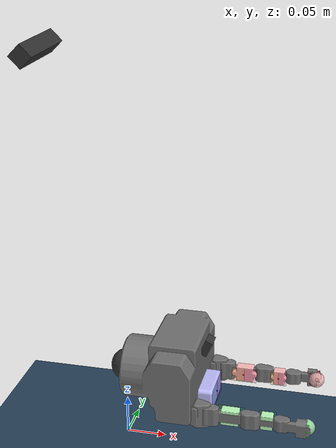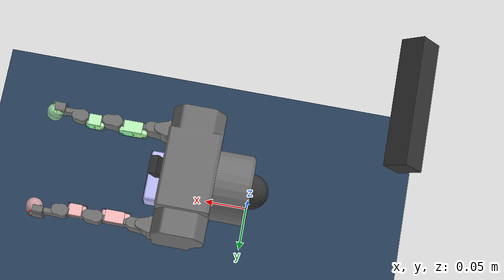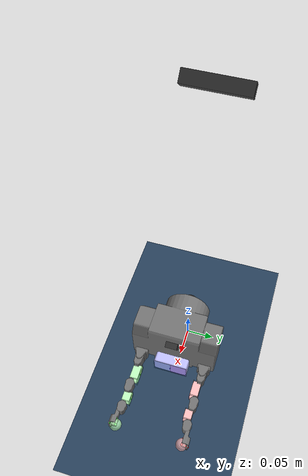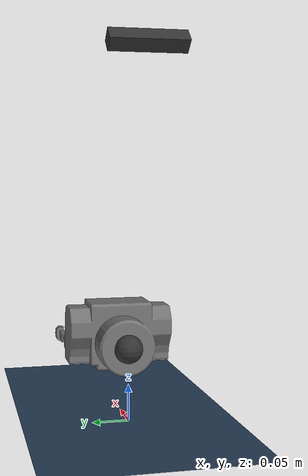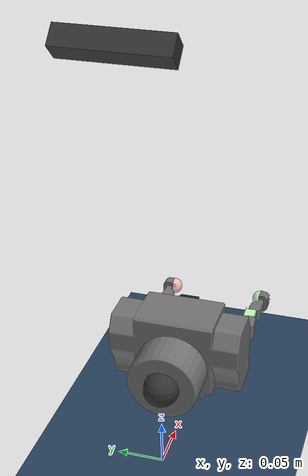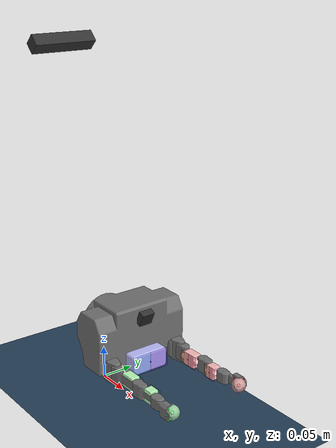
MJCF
<mujoco model="scene">

  <include file="scene_v2.xml"/>
  <!-- CUBE -->
  <worldbody>
    <body name="object" pos="0.22 0 0.02">
        <joint type="free" group="3" stiffness="0" damping="0" frictionloss="0" armature="0"/>
        <geom name="object" type="box" group="3" size="0.03 0.03 0.03" rgba="0.7 0.2 0.1 0.6" class="contact" density="1000"/>
    </body>

  </worldbody>

</mujoco>

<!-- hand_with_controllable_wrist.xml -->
<mujoco model="hand">

    <compiler angle="radian" autolimits="true"/>

    <default class="main">
        <default class="XM430">
            <joint armature="0.002214" damping="0.1" frictionloss = "0.04"/> <!-- Reflected Inertia: 4.9e-8*212.6**2 -->
        </default>
        <default class="AK606">
            <!-- TODO: correct rotor inertia -->
            <joint armature="0.011087" damping="0.1" frictionloss="0.04"/> <!-- Reflected Inertia: 4.78e-7*152.3**2 -->
        </default>
        <!-- TODO: add defaults for contact parameters for different sensor bodies? -->
        <default class="contact">
            <geom conaffinity="1" contype="1" condim="6" priority="1" friction="1.0 0.02 0.0001" solimp="0.95 0.99 0.001 0.5 2"  solref="0.005 1"/>
        </default>
        <default class="no_contact">
            <geom conaffinity="0" contype="0" priority="0"/>
        </default>

    </default>

    <asset>
        <mesh name="palm_structure" file="meshes/palm_block_structure.STL"/>
        <mesh name="palm_sensor"    file="meshes/palm_block_sensor.STL"/>
        <mesh name="mcr"            file="meshes/right_finger_MCR_block.STL"/>
        <mesh name="mcp_structure"  file="meshes/right_finger_MCP_structure.STL"/>
        <mesh name="mcp_sensor"     file="meshes/right_finger_MCP_sensor.STL"/>
        <mesh name="pip_structure"  file="meshes/right_finger_PIP_structure.STL"/>
        <mesh name="pip_sensor"     file="meshes/right_finger_PIP_sensor.STL"/>
        <mesh name="dip"            file="meshes/right_finger_DIP_block_no_sphere.STL"/>
    </asset>

    <worldbody>

        <!-- FLOATING BASE WITH MOCAP-->

        <body name="floating_2" pos="0 0 0.1" euler="0 0 0">
            <inertial mass="5.0" pos="0 0 0" diaginertia="0.1 0.1 0.1"/>
            <geom name="floating_2" type="sphere" group="1" size="0.02" rgba="0.2 0.2 0.2 1" class="contact"/>
            <site name="floating_2" group="4" pos="0.1 0 0" euler="0 0 0" size="0.01" rgba="0.1 0.1 0.1 0.2"/>
            <freejoint name="floating_2"/>

            <!-- PALM -->
            <body name="palm" pos="0 0 0" >
                <inertial pos="0.0749802 -4.70306e-06 -0.0266387" quat="0.00107158 0.711377 -0.0010321 0.702809" mass="1.5008" diaginertia="0.00408874 0.0030361 0.00192975"/>
                <joint name="1_w_roll" group="0" class="AK606" pos="0 0 0" axis="1 0 0" range="-12.5 12.5"/>
                <geom name="palm" type="mesh" class="contact" group="1" density="0" rgba="0.45 0.45 0.45 1" mesh="palm_structure"/>
                <geom name="palm_sensor" type="mesh" class="contact" group="2" density="0" rgba="0.75 0.75 1 1" mesh="palm_sensor"/>
                <site name="palm_tof" group="0" size="0.001" pos="0.118 0 -0.0236" rgba="0 0 1 1" euler="0 1.57079633 0"/>
                <site name="palm_fsr1" group="1" type="box" size="0.0148 0.01465 0.0001" pos="0.118 0.01465 -0.0236" rgba="0.4 0 0.9 0.1" euler="0 1.57079633 0"/>
                <site name="palm_fsr2" group="1" type="box" size="0.0148 0.01465 0.0001" pos="0.118 -0.01465 -0.0236" rgba="0 0.4 0.9 0.1" euler="0 1.57079633 0"/>

                <!-- PALM CAMERA -->
                <body name="palm_camera" pos="0.105 0 0.04" euler="0 2.0 1.5707963308">
                    <camera name="palm_camera" mode="fixed" pos ="0 0 0" euler="0 3.1415926516 0"/>
                    <geom name="palm_camera" type="box" group="1" size="0.01 0.01 0.005" rgba="0.2 0.2 0.2 1" class="no_contact"/>
                </body>

                <!-- LEFT FINGER -->
                <body name="l_mcr" pos="0.097 0.0565 -0.0236">
                    <inertial pos="0.0074427 1.8066e-09 0" quat="0.707107 -0.000458825 0.000458825 0.707107" mass="0.010716" diaginertia="6.50791e-07 4.9487e-07 3.46479e-07"/>
                    <joint name="2_l_mcr" group="1" class="XM430" pos="0 0 0" axis="0 1 0" range="-1 1" />
                    <geom name="l_mcr" type="mesh" class="contact" group="1" density="0" rgba="0.45 0.45 0.45 1" mesh="mcr"/>

                    <body name="l_mcp" pos="0.0185 0 0">
                        <inertial pos="0.015541 -2.172e-09 4.8274e-09" quat="0 0.707107 0 0.707107" mass="0.011831" diaginertia="1.0186e-06 8.576e-07 2.7094e-07"/>
                        <joint name="3_l_mcp" group="1" class="XM430" pos="0 0 0" axis="0 0 1" range="-1.57079633 1.57079633" />
                        <geom name="l_mcp" quat="0 1 0 0" type="mesh" class="contact" group="1" density="0" rgba="0.45 0.45 0.45 1" mesh="mcp_structure"/>
                        <geom name="l_mcp_sensor" pos="0 -0.00001 0" quat="0 1 0 0" type="mesh" class="contact" group="2" density="0" rgba="1 0.75 0.75 1" mesh="mcp_sensor"/>
                        <site name="l_mcp_tof" group="0" size="0.001" pos="0.02825 -0.01025 0" rgba="1 0 0 1" euler="1.57079633 0 0"/>
                        <site name="l_mcp_fsr1" group="1" type="box" size="0.008125 0.00975 0.0001" pos="0.021125 -0.01025 0" rgba="0.9 0.4 0 0.1" euler="1.57079633 0 0"/>
                        <site name="l_mcp_fsr2" group="1" type="box" size="0.008125 0.00975 0.0001" pos="0.037375 -0.01025 0" rgba="0.9 0 0.4 0.1" euler="1.57079633 0 0"/>

                        <body name="l_pip" pos="0.05 0 0">
                            <inertial pos="0.012348 -2.7466e-09 -4.6495e-09" quat="0 0.707107 0 0.707107" mass="0.010593" diaginertia="6.35e-07 4.7964e-07 2.2485e-07"/>
                            <joint name="4_l_pip" group="1" class="XM430" pos="0 0 0" axis="0 0 1" range="-1.57079633 1.57079633" />
                            <geom name="l_pip" quat="0 1 0 0" type="mesh" class="contact" group="1" density="0" rgba="0.45 0.45 0.45 1" mesh="pip_structure"/>
                            <geom name="l_pip_sensor" pos="0 -0.00001 0" quat="0 1 0 0" type="mesh" class="contact" group="2" density="0" rgba="1 0.75 0.75 1" mesh="pip_sensor"/>
                            <site name="l_pip_tof" group="0" size="0.001" pos="0.024 -0.00975 0" rgba="1 0 0 1" euler="1.57079633 0 0"/>
                            <site name="l_pip_fsr1" group="1" type="box" size="0.00525 0.00925 0.0001" pos="0.01875 -0.00975 0" rgba="0.9 0.4 0 0.1" euler="1.57079633 0 0"/>
                            <site name="l_pip_fsr2" group="1" type="box" size="0.00525 0.00925 0.0001" pos="0.02925 -0.00975 0" rgba="0.9 0 0.4 0.1" euler="1.57079633 0 0"/>

                            <body name="l_dip" pos="0.04 0 0">
                                <inertial pos="0.022019 -0.0011798 9.2257e-05" quat="0.559785 0.00180072 -0.00151435 0.828635" mass="0.027278" diaginertia="1.18481e-06 1.169e-06 9.71445e-07"/>
                                <joint name="5_l_dip" group="1" class="XM430" pos="0 0 0" axis="0 0 1" range="-1.57079633 1.57079633" />
                                <geom name="l_dip" quat="0 1 0 0" type="mesh" class="contact" group="1" density="0" rgba="0.45 0.45 0.45 1" mesh="dip"/>
                                <site name="l_dip_tof1" group="0" size="0.001" pos="0.035 0.008 0.00782" rgba="1 0 0 1" euler="0 1.57079633 0"/>
                                <site name="l_dip_tof2" group="0" size="0.001" pos="0.0243 0 0.00735" rgba="1 0 0 1" euler="1.57079633 0 0"/>
                                <site name="l_dip_tof3" group="0" size="0.001" pos="0.035 0.008 -0.00782" rgba="1 0 0 1" euler="0 1.57079633 0"/>
                                <site name="l_dip_tof4" group="0" size="0.001" pos="0.0243 0 -0.00735" rgba="1 0 0 1" euler="1.57079633 0 0"/>
                                <site name="l_dip_tof5" group="0" size="0.001" pos="0.034 0.011 0" rgba="1 0 0 1" euler="-1.57079633 0 0"/>

                                <body name="l_dip_tip" pos="0.0325 0 0">
                                    <inertial pos="0 0 0" mass="0.001" diaginertia="4e-8 4e-8 4e-8"/>
                                    <geom name="l_dip_tip" size="0.01" group="2" pos="0 0 0" rgba="1 0.75 0.75 0.8" class="contact"/>
                                    <site name="l_dip_force" group="2" size="0.002" pos="0 0 0" rgba="1 0 0 1" euler="-1.57079633 3.14159265 0"/>
                                </body>
                            </body>
                        </body>
                    </body>
                </body>

                <!-- RIGHT FINGER -->
                <body name="r_mcr" pos="0.097 -0.0565 -0.0236">
                    <inertial pos="0.0074427 1.8066e-09 0" quat="0.707107 -0.000458825 0.000458825 0.707107" mass="0.010716" diaginertia="6.50791e-07 4.9487e-07 3.46479e-07"/>
                    <joint name="6_r_mcr" group="2" class="XM430" pos="0 0 0" axis="0 1 0" range="-1 1" /> <!-- Reflected Inertia: 9.93E-6*212.6**2-->
                    <geom name="r_mcr" type="mesh" class="contact" group="1" density="0" rgba="0.45 0.45 0.45 1" mesh="mcr"/>

                    <body name="r_mcp" pos="0.0185 0 0">
                        <inertial pos="0.015541 -2.172e-09 4.8274e-09" quat="0 0.707107 0 0.707107" mass="0.011831" diaginertia="1.0186e-06 8.576e-07 2.7094e-07"/>
                        <joint name="7_r_mcp" group="2" class="XM430" pos="0 0 0" axis="0 0 1" range="-1.57079633 1.57079633" />
                        <geom name="r_mcp" type="mesh" class="contact" group="1" density="0" rgba="0.45 0.45 0.45 1" mesh="mcp_structure"/>
                        <geom name="r_mcp_sensor" pos="0 0.00001 0" type="mesh" class="contact" group="2" density="0" rgba="0.75 1 0.75 1" mesh="mcp_sensor"/>
                        <site name="r_mcp_tof" group="0" size="0.001" pos="0.02825 0.01025 0" rgba="0 1 0 1" euler="-1.57079633 0 0"/>
                        <site name="r_mcp_fsr1" group="1" type="box" size="0.008125 0.00975 0.0001" pos="0.021125 0.01025 0" rgba="0.4 0.9 0 0.1" euler="-1.57079633 0 0"/>
                        <site name="r_mcp_fsr2" group="1" type="box" size="0.008125 0.00975 0.0001" pos="0.037375 0.01025 0" rgba="0 0.9 0.4 0.1" euler="-1.57079633 0 0"/>

                        <body name="r_pip" pos="0.05 0 0">
                            <inertial pos="0.012348 -2.7466e-09 -4.6495e-09" quat="0 0.707107 0 0.707107" mass="0.010593" diaginertia="6.35e-07 4.7964e-07 2.2485e-07"/>
                            <joint name="8_r_pip" group="2" class="XM430" pos="0 0 0" axis="0 0 1" range="-1.57079633 1.57079633" />
                            <geom name="r_pip" type="mesh" class="contact" group="1" density="0" rgba="0.45 0.45 0.45 1" mesh="pip_structure"/>
                            <geom name="r_pip_sensor" pos="0 0.00001 0" type="mesh" class="contact" group="2" density="0" rgba="0.75 1 0.75 1" mesh="pip_sensor"/>
                            <site name="r_pip_tof" group="0" size="0.001" pos="0.024 0.00975 0" rgba="0 1 0 1" euler="-1.57079633 0 0"/>
                            <site name="r_pip_fsr1" group="1" type="box" size="0.00525 0.00925 0.0001" pos="0.01875 0.00975 0" rgba="0.4 0.9 0 0.1" euler="-1.57079633 0 0"/>
                            <site name="r_pip_fsr2" group="1" type="box" size="0.00525 0.00925 0.0001" pos="0.02925 0.00975 0" rgba="0 0.9 0.4 0.1" euler="-1.57079633 0 0"/>

                            <body name="r_dip" pos="0.04 0 0">
                                <inertial pos="0.022019 -0.0011798 9.2257e-05" quat="0.559785 0.00180072 -0.00151435 0.828635" mass="0.027278" diaginertia="1.18481e-06 1.169e-06 9.71445e-07"/>
                                <joint name="9_r_dip" group="2" class="XM430" pos="0 0 0" axis="0 0 1" range="-1.57079633 1.57079633" />
                                <geom name="r_dip" type="mesh" class="contact" group="1" density="0" rgba="0.45 0.45 0.45 1" mesh="dip"/>
                                <site name="r_dip_tof1" group="0" size="0.001" pos="0.035 -0.008 -0.00782" rgba="0 1 0 1" euler="0 1.57079633 0"/>
                                <site name="r_dip_tof2" group="0" size="0.001" pos="0.0243 0 -0.00735" rgba="0 1 0 1" euler="-1.57079633 0 0"/>
                                <site name="r_dip_tof3" group="0" size="0.001" pos="0.035 -0.008 0.00782" rgba="0 1 0 1" euler="0 1.57079633 0"/>
                                <site name="r_dip_tof4" group="0" size="0.001" pos="0.0243 0 0.00735" rgba="0 1 0 1" euler="-1.57079633 0 0"/>
                                <site name="r_dip_tof5" group="0" size="0.001" pos="0.034 -0.011 0" rgba="0 1 0 1" euler="1.57079633 0 0"/>

                                <body name="r_dip_tip" pos="0.0325 0 0">
                                    <inertial pos="0 0 0" mass="0.001" diaginertia="4e-8 4e-8 4e-8"/>
                                    <geom name="r_dip_tip" size="0.01" group="2" pos="0 0 0" rgba="0.75 1 0.75 0.8" class="contact"/>
                                    <site name="r_dip_force" group="2" size="0.002" pos="0 0 0" rgba="0 1 0 1" euler="1.57079633 3.14159265 0"/>
                                </body>
                            </body>
                        </body>
                    </body>
                </body>
            </body>
        </body>

    </worldbody>

    <contact>
        <exclude body1="floating_2"   body2="palm"/>
        <exclude body1="palm"       body2="palm_camera"/>
        <exclude body1="l_mcr"      body2="palm"/>
        <exclude body1="r_mcr"      body2="palm"/>
        <exclude body1="l_mcp"      body2="l_mcr"/>
        <exclude body1="r_mcp"      body2="r_mcr"/>
        <exclude body1="l_pip"      body2="l_mcp"/>
        <exclude body1="r_pip"      body2="r_mcp"/>
        <exclude body1="l_dip"      body2="l_pip"/>
        <exclude body1="r_dip"      body2="r_pip"/>
        <exclude body1="l_dip_tip"  body2="l_dip"/>
        <exclude body1="r_dip_tip"  body2="r_dip"/>
    </contact>

    <sensor>
        <!-- TOF SENSORS -->
        <rangefinder name="palm_tof"    site="palm_tof"     cutoff="0.255"   noise="0.003"/>
        <rangefinder name="l_mcp_tof"   site="l_mcp_tof"    cutoff="0.255"   noise="0.003"/>
        <rangefinder name="l_pip_tof"   site="l_pip_tof"    cutoff="0.255"   noise="0.003"/>
        <rangefinder name="r_mcp_tof"   site="r_mcp_tof"    cutoff="0.255"   noise="0.003"/>
        <rangefinder name="r_pip_tof"   site="r_pip_tof"    cutoff="0.255"   noise="0.003"/>
        <rangefinder name="l_dip_tof1"  site="l_dip_tof1"   cutoff="0.255"   noise="0.003"/>
        <rangefinder name="l_dip_tof2"  site="l_dip_tof2"   cutoff="0.255"   noise="0.003"/>
        <rangefinder name="l_dip_tof3"  site="l_dip_tof3"   cutoff="0.255"   noise="0.003"/>
        <rangefinder name="l_dip_tof4"  site="l_dip_tof4"   cutoff="0.255"   noise="0.003"/>
        <rangefinder name="l_dip_tof5"  site="l_dip_tof5"   cutoff="0.255"   noise="0.003"/>
        <rangefinder name="r_dip_tof1"  site="r_dip_tof1"   cutoff="0.255"   noise="0.003"/>
        <rangefinder name="r_dip_tof2"  site="r_dip_tof2"   cutoff="0.255"   noise="0.003"/>
        <rangefinder name="r_dip_tof3"  site="r_dip_tof3"   cutoff="0.255"   noise="0.003"/>
        <rangefinder name="r_dip_tof4"  site="r_dip_tof4"   cutoff="0.255"   noise="0.003"/>
        <rangefinder name="r_dip_tof5"  site="r_dip_tof5"   cutoff="0.255"   noise="0.003"/>

        <!-- CONTACT SENSORS -->
        <touch name="palm_fsr1"     site="palm_fsr1"/>
        <touch name="palm_fsr2"     site="palm_fsr2"/>
        <touch name="l_mcp_fsr1"    site="l_mcp_fsr1"/>
        <touch name="l_mcp_fsr2"    site="l_mcp_fsr2"/>
        <touch name="l_pip_fsr1"    site="l_pip_fsr1"/>
        <touch name="l_pip_fsr2"    site="l_pip_fsr2"/>
        <touch name="r_mcp_fsr1"    site="r_mcp_fsr1"/>
        <touch name="r_mcp_fsr2"    site="r_mcp_fsr2"/>
        <touch name="r_pip_fsr1"    site="r_pip_fsr1"/>
        <touch name="r_pip_fsr2"    site="r_pip_fsr2"/>

        <!-- FORCE SENSORS -->
        <force name="l_dip_force"   site="l_dip_force"/>
        <force name="r_dip_force"   site="r_dip_force"/>
    </sensor>

    <!-- ACTUATORS -->
    <actuator>
        <motor name="1_w_roll"  group="0"   gear="1"    joint="1_w_roll"    ctrllimited="true"  ctrlrange="-10 10"/>
        <motor name="2_l_mcr"   group="1"   gear="1"    joint="2_l_mcr"     ctrllimited="true"  ctrlrange="-3 3"/>
        <motor name="3_l_mcp"   group="1"   gear="1"    joint="3_l_mcp"     ctrllimited="true"  ctrlrange="-3 3"/>
        <motor name="4_l_pip"   group="1"   gear="1"    joint="4_l_pip"     ctrllimited="true"  ctrlrange="-3 3"/>
        <motor name="5_l_dip"   group="1"   gear="1"    joint="5_l_dip"     ctrllimited="true"  ctrlrange="-3 3"/>
        <motor name="6_r_mcr"   group="2"   gear="1"    joint="6_r_mcr"     ctrllimited="true"  ctrlrange="-3 3"/>
        <motor name="7_r_mcp"   group="2"   gear="1"    joint="7_r_mcp"     ctrllimited="true"  ctrlrange="-3 3"/>
        <motor name="8_r_pip"   group="2"   gear="1"    joint="8_r_pip"     ctrllimited="true"  ctrlrange="-3 3"/>
        <motor name="9_r_dip"   group="2"   gear="1"    joint="9_r_dip"     ctrllimited="true"  ctrlrange="-3 3"/>

        <motor name="0_base_x" joint="floating_2" gear="1 0 0 0 0 0" ctrlrange="-100 100" ctrllimited="true"/>
        <motor name="0_base_y" joint="floating_2" gear="0 1 0 0 0 0" ctrlrange="-100 100" ctrllimited="true"/>
        <motor name="0_base_z" joint="floating_2" gear="0 0 1 0 0 0" ctrlrange="-100 100" ctrllimited="true"/>
        <motor name="0_base_roll" joint="floating_2" gear="0 0 0 1 0 0" ctrlrange="-100 100" ctrllimited="true"/>
        <motor name="0_base_pitch" joint="floating_2" gear="0 0 0 0 1 0" ctrlrange="-100 100" ctrllimited="true"/>
        <motor name="0_base_yaw" joint="floating_2" gear="0 0 0 0 0 1" ctrlrange="-100 100" ctrllimited="true"/>
    </actuator>

</mujoco>

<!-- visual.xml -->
<mujoco model="visual">

    <visual>
        <quality shadowsize="8192"/>
        <global azimuth="120" elevation="-30" ellipsoidinertia="true"/>
        <scale framelength="0.5" framewidth="0.03"
                forcewidth="0.025"
                contactwidth="0.05" contactheight="0.02"
                selectpoint="0.05"/>
        <headlight diffuse="0.6 0.6 0.6" ambient="0.3 0.3 0.3" specular="0 0 0"/>
        <rgba haze="0.15 0.25 0.35 1"
                rangefinder="0.1 1 0.1 0.7"
                force="1 0.5 0.5 1"
                contactpoint="0.9 0.6 0.2 0.7"
                contactforce="0.7 0.9 0.9 0.7"
                contactfriction="0.9 0.8 0.4 0.7"/>

    </visual>

</mujoco>

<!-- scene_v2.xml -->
<mujoco model="scene">

  <include file="hand_with_controllable_wrist.xml"/>

  <include file="visual.xml"/>

  <asset>
    <texture name="blue_grid" type="2d" builtin="checker" rgb1=".02 .14 .44" rgb2=".27 .55 1" width="300" height="300" mark="edge" markrgb="1 1 1"/>
    <material name="blue_grid" texture="blue_grid" texrepeat="1 1" texuniform="true" reflectance=".2"/>
    <texture name="grey_grid" type="2d" builtin="checker" rgb1=".26 .26 .26" rgb2=".6 .6 .6" width="300" height="300" mark="edge" markrgb="1 1 1"/>
    <material name="grey_grid" texture="grey_grid" texrepeat="1 1" texuniform="true" reflectance=".2"/>
    <texture type="skybox" builtin="gradient" rgb1="0.3 0.5 0.7" rgb2="0 0 0" width="512" height="3072"/>
    <texture type="2d" name="groundplane" builtin="checker" mark="edge" rgb1="0.2 0.3 0.4" rgb2="0.1 0.2 0.3"
      markrgb="0.8 0.8 0.8" width="300" height="300"/>
    <material name="groundplane" texture="groundplane" texuniform="true" texrepeat="5 5" reflectance="0.2"/>
  </asset>

  <worldbody>
    <light pos="0 -0.1 0.5" dir="0 0.2 -1" diffuse="0.7 0.7 0.7" specular="0.3 0.3 0.3"
        directional="true" castshadow="true"/>
    <geom name="floor" group="0" size="0 0 0.05" type="plane" material="groundplane"/>

    <!-- FIXED CAMERA -->
    <body name="upper_camera" pos="-0.1 0 0.5" euler="0 2.356 1.5707963308">
        <camera name="upper_camera" mode="fixed" pos ="0 0 0" euler="0 3.1415926516 0"/>
        <geom name="upper_camera" type="box" group="0" size="0.05 0.01 0.01" rgba="0.2 0.2 0.2 1" class="no_contact"/>
    </body>

  </worldbody>

  <option cone="elliptic" tolerance="1e-10" impratio="10" timestep="0.001" integrator="implicitfast" solver="Newton" noslip_iterations="0">
    <flag contact="enable" override="disable" multiccd="disable"/>
  </option>

</mujoco>
